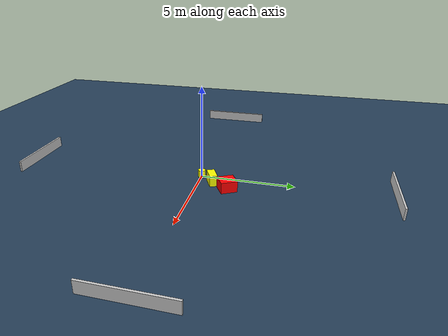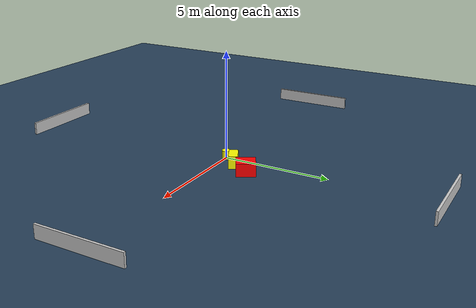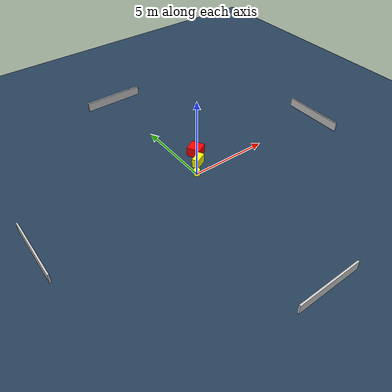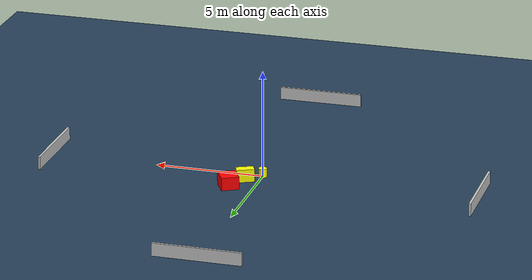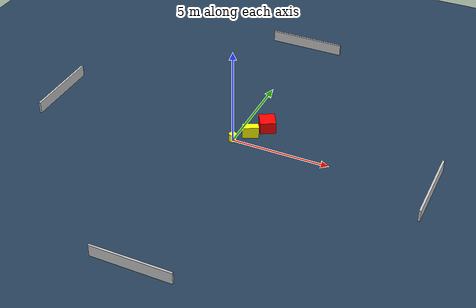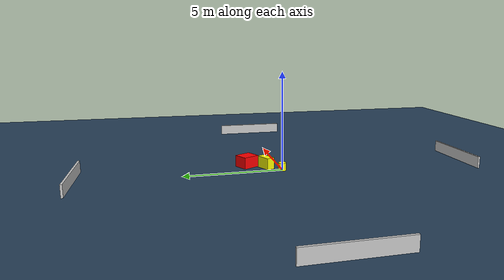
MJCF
<?xml version="1.0" ?>
<mujoco model="generated_environment">
  <option timestep="0.01" integrator="RK4" cone="elliptic"/>
  <default>
    <geom density="1"/>
  </default>
  <asset>
    <texture builtin="gradient" height="3072" name="skybox" rgb1="0.3 0.5 0.7" rgb2="0 0 0" type="skybox" width="512"/>
    <texture builtin="checker" height="300" name="groundplane" rgb1="0.2 0.3 0.4" rgb2="0.1 0.2 0.3" type="2d" width="300"/>
    <material name="groundplane" reflectance="0.2" texrepeat="5 5" texture="groundplane"/>
  </asset>
  <worldbody>
    <light dir="0 0 -1" directional="true" pos="0 0 1.5"/>
    <geom condim="3" friction="0.5 0.005 0.001" material="groundplane" name="floor" pos="0 0 0" size="0 0 0.05" type="plane"/>
    <body name="walls">
      <geom name="wall_1" condim="4" pos="-10.0 0.0 0.3" rgba="0.800000011920929 0.800000011920929 0.800000011920929 1.0" size="0.05 2.0 0.3" type="box"/>
      <geom name="wall_2" condim="4" pos="10.0 0.0 0.3" rgba="0.800000011920929 0.800000011920929 0.800000011920929 1.0" size="0.05 2.0 0.3" type="box"/>
      <geom name="wall_3" condim="4" pos="0.0 -10.0 0.3" rgba="0.800000011920929 0.800000011920929 0.800000011920929 1.0" size="2.0 0.05 0.3" type="box"/>
      <geom name="wall_4" condim="4" pos="0.0 10.0 0.3" rgba="0.800000011920929 0.800000011920929 0.800000011920929 1.0" size="2.0 0.05 0.3" type="box"/>
    </body>
    <body name="robot">
      <joint name="joint_x" type="slide" pos="0 0 0" axis="1 0 0"/>
      <joint name="joint_y" type="slide" pos="0 0 0" axis="0 1 0"/>
      <geom name="robot" type="cylinder" pos="0.0 0.0 0.2" size="0.2 0.2 0.0" mass="5.0" friction="1.0 0.005 0.0001" condim="4" rgba="1.0 1.0 0.0 1.0"/>
    </body>
    <body name="obstacle_1_movable">
      <geom name="obstacle_1_movable" condim="4" pos="0.6288419184738597 0.7183943280118097 0.3" euler="0 0 295.60951985917455" friction="0.0 0.005 0.001" rgba="1.0 1.0 0.0 1.0" size="0.20852302734840303 0.4126506115286162 0.3" type="box" mass="0.1"/>
      <joint type="free"/>
    </body>
    <body name="obstacle_2_static">
      <geom name="obstacle_2_static" condim="4" pos="1.1420608226018267 1.6325515844561924 0.3" euler="0 0 29.21156457844991" friction="0.0 0.005 0.001" rgba="1.0 0.0 0.0 1.0" size="0.4007024893082986 0.43265735643414893 0.3" type="box"/>
    </body>
  </worldbody>
  <actuator>
    <motor name="actuator_x" joint="joint_x" gear="1" ctrlrange="-1 1"/>
    <motor name="actuator_y" joint="joint_y" gear="1" ctrlrange="-1 1"/>
  </actuator>
</mujoco>
